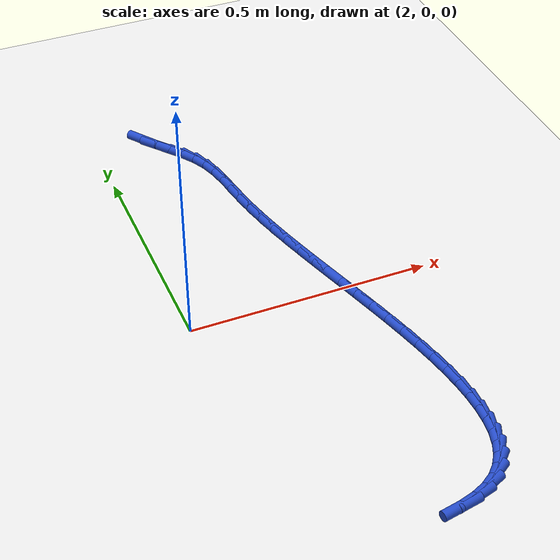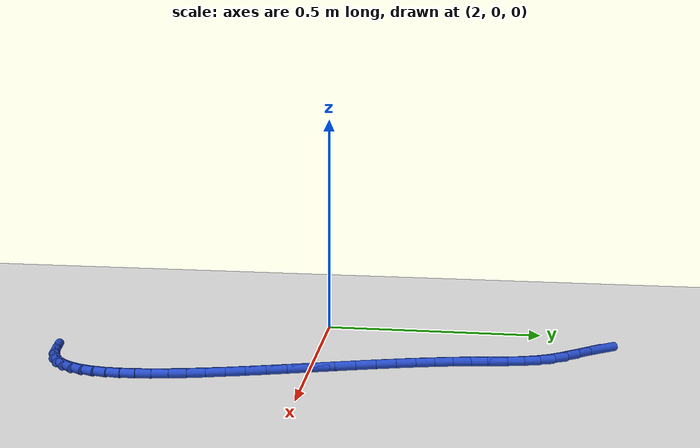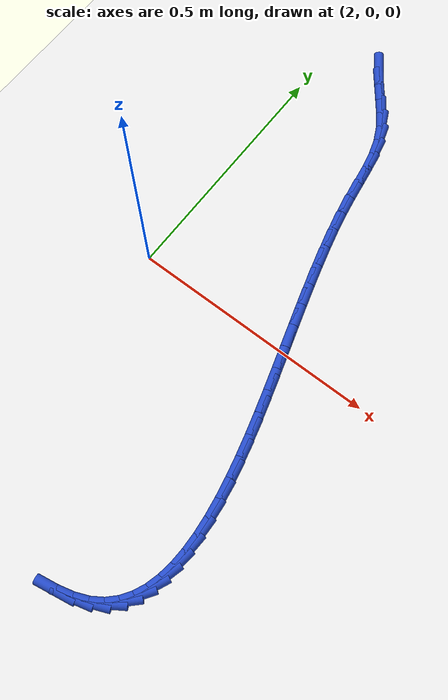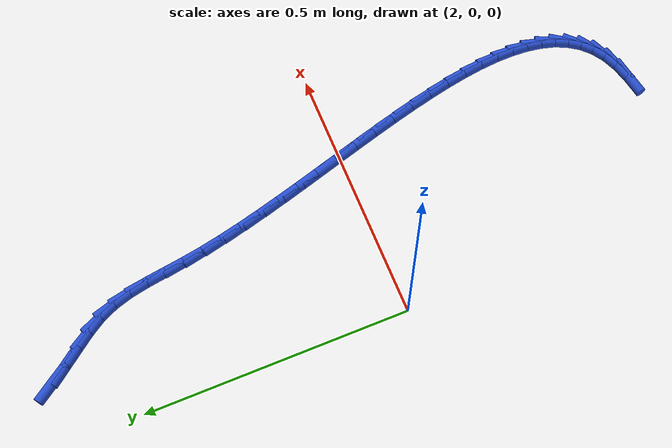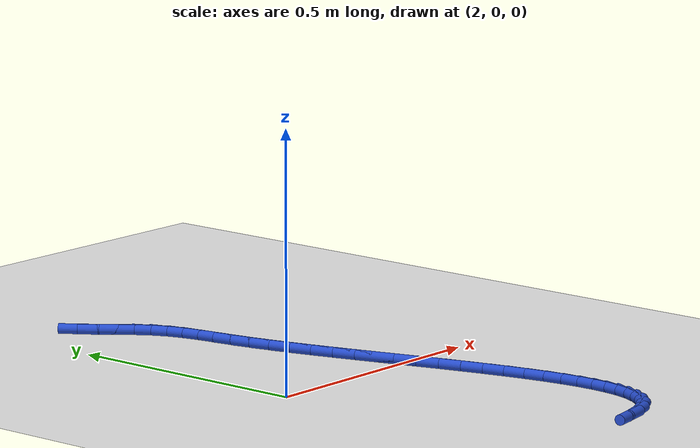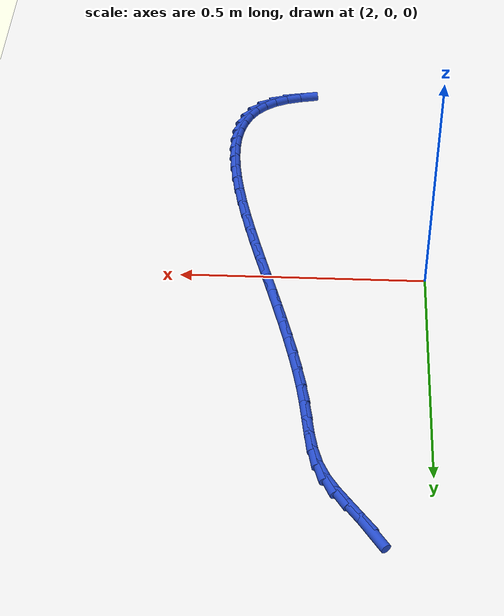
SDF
<sdf version="1.6">
 <world name="default">
  <model name="ground_plane">
   <static>1</static>
   <link name="link">
    <collision name="collision">
     <geometry><plane><normal>0 0 1</normal><size>100 100</size></plane></geometry>
     <surface><friction><ode><mu>100</mu><mu2>50</mu2></ode></friction></surface>
    </collision>
    <visual name="visual">
     <cast_shadows>0</cast_shadows>
     <geometry><plane><normal>0 0 1</normal><size>100 100</size></plane></geometry>
     <material>
      <script><uri>file://media/materials/scripts/gazebo.material</uri><name>Gazebo/WhiteGlow</name></script>
     </material>
    </visual>
   </link>
  </model>
  <model name="line">
   <link name="link_92">
    <pose>2.110981514061164 0.6293908906625809 0.01 0 1.57 -0.9618954678939433</pose>
    <collision name="collision">
     <geometry><cylinder><radius>0.01</radius><length>0.08</length></cylinder></geometry>
    </collision>
    <visual name="visual">
     <material>
      <script><name>Gazebo/Blue</name><uri>file://media/materials/scripts/gazebo.material</uri></script>
     </material>
     <geometry><cylinder><radius>0.01</radius><length>0.08</length></cylinder></geometry>
    </visual>
   </link>
   <link name="link_93">
    <pose>2.132265491286733 0.598866777954298 0.01 0 1.57 -0.9082118773592756</pose>
    <collision name="collision">
     <geometry><cylinder><radius>0.01</radius><length>0.08</length></cylinder></geometry>
    </collision>
    <visual name="visual">
     <material>
      <script><name>Gazebo/Blue</name><uri>file://media/materials/scripts/gazebo.material</uri></script>
     </material>
     <geometry><cylinder><radius>0.01</radius><length>0.08</length></cylinder></geometry>
    </visual>
   </link>
   <link name="link_94">
    <pose>2.1544194383078334 0.5704735426587182 0.01 0 1.57 -0.9150123487633394</pose>
    <collision name="collision">
     <geometry><cylinder><radius>0.01</radius><length>0.08</length></cylinder></geometry>
    </collision>
    <visual name="visual">
     <material>
      <script><name>Gazebo/Blue</name><uri>file://media/materials/scripts/gazebo.material</uri></script>
     </material>
     <geometry><cylinder><radius>0.01</radius><length>0.08</length></cylinder></geometry>
    </visual>
   </link>
   <link name="link_95">
    <pose>2.1756700421775492 0.542852807600791 0.01 0 1.57 -0.9884715267036742</pose>
    <collision name="collision">
     <geometry><cylinder><radius>0.01</radius><length>0.08</length></cylinder></geometry>
    </collision>
    <visual name="visual">
     <material>
      <script><name>Gazebo/Blue</name><uri>file://media/materials/scripts/gazebo.material</uri></script>
     </material>
     <geometry><cylinder><radius>0.01</radius><length>0.08</length></cylinder></geometry>
    </visual>
   </link>
   <link name="link_96">
    <pose>2.194243989948961 0.5146461956054671 0.01 0 1.57 -1.1286883505743908</pose>
    <collision name="collision">
     <geometry><cylinder><radius>0.01</radius><length>0.08</length></cylinder></geometry>
    </collision>
    <visual name="visual">
     <material>
      <script><name>Gazebo/Blue</name><uri>file://media/materials/scripts/gazebo.material</uri></script>
     </material>
     <geometry><cylinder><radius>0.01</radius><length>0.08</length></cylinder></geometry>
    </visual>
   </link>
   <link name="link_97">
    <pose>2.2084878561581425 0.48455510550825714 0.01 0 1.57 -1.2718772010710533</pose>
    <collision name="collision">
     <geometry><cylinder><radius>0.01</radius><length>0.08</length></cylinder></geometry>
    </collision>
    <visual name="visual">
     <material>
      <script><name>Gazebo/Blue</name><uri>file://media/materials/scripts/gazebo.material</uri></script>
     </material>
     <geometry><cylinder><radius>0.01</radius><length>0.08</length></cylinder></geometry>
    </visual>
   </link>
   <link name="link_98">
    <pose>2.2184759166626873 0.4521423696310134 0.01 0 1.57 -1.3678788998272395</pose>
    <collision name="collision">
     <geometry><cylinder><radius>0.01</radius><length>0.08</length></cylinder></geometry>
    </collision>
    <visual name="visual">
     <material>
      <script><name>Gazebo/Blue</name><uri>file://media/materials/scripts/gazebo.material</uri></script>
     </material>
     <geometry><cylinder><radius>0.01</radius><length>0.08</length></cylinder></geometry>
    </visual>
   </link>
   <link name="link_99">
    <pose>2.2255793844956195 0.41761747437790997 0.01 0 1.57 -1.4176166113028246</pose>
    <collision name="collision">
     <geometry><cylinder><radius>0.01</radius><length>0.08</length></cylinder></geometry>
    </collision>
    <visual name="visual">
     <material>
      <script><name>Gazebo/Blue</name><uri>file://media/materials/scripts/gazebo.material</uri></script>
     </material>
     <geometry><cylinder><radius>0.01</radius><length>0.08</length></cylinder></geometry>
    </visual>
   </link>
   <link name="link_100">
    <pose>2.2312009799965686 0.38120561572550854 0.01 0 1.57 -1.4262399964397687</pose>
    <collision name="collision">
     <geometry><cylinder><radius>0.01</radius><length>0.08</length></cylinder></geometry>
    </collision>
    <visual name="visual">
     <material>
      <script><name>Gazebo/Blue</name><uri>file://media/materials/scripts/gazebo.material</uri></script>
     </material>
     <geometry><cylinder><radius>0.01</radius><length>0.08</length></cylinder></geometry>
    </visual>
   </link>
   <link name="link_101">
    <pose>2.236743423505167 0.3431319896503729 0.01 0 1.57 -1.400547397545784</pose>
    <collision name="collision">
     <geometry><cylinder><radius>0.01</radius><length>0.08</length></cylinder></geometry>
    </collision>
    <visual name="visual">
     <material>
      <script><name>Gazebo/Blue</name><uri>file://media/materials/scripts/gazebo.material</uri></script>
     </material>
     <geometry><cylinder><radius>0.01</radius><length>0.08</length></cylinder></geometry>
    </visual>
   </link>
   <link name="link_102">
    <pose>2.2435359622238766 0.3036205223812389 0.01 0 1.57 -1.3664741845625026</pose>
    <collision name="collision">
     <geometry><cylinder><radius>0.01</radius><length>0.08</length></cylinder></geometry>
    </collision>
    <visual name="visual">
     <material>
      <script><name>Gazebo/Blue</name><uri>file://media/materials/scripts/gazebo.material</uri></script>
     </material>
     <geometry><cylinder><radius>0.01</radius><length>0.08</length></cylinder></geometry>
    </visual>
   </link>
   <link name="link_103">
    <pose>2.251978150828213 0.26287907338951494 0.01 0 1.57 -1.339153936562005</pose>
    <collision name="collision">
     <geometry><cylinder><radius>0.01</radius><length>0.08</length></cylinder></geometry>
    </collision>
    <visual name="visual">
     <material>
      <script><name>Gazebo/Blue</name><uri>file://media/materials/scripts/gazebo.material</uri></script>
     </material>
     <geometry><cylinder><radius>0.01</radius><length>0.08</length></cylinder></geometry>
    </visual>
   </link>
   <link name="link_104">
    <pose>2.261831793939757 0.22110448067977184 0.01 0 1.57 -1.3178457385438163</pose>
    <collision name="collision">
     <geometry><cylinder><radius>0.01</radius><length>0.08</length></cylinder></geometry>
    </collision>
    <visual name="visual">
     <material>
      <script><name>Gazebo/Blue</name><uri>file://media/materials/scripts/gazebo.material</uri></script>
     </material>
     <geometry><cylinder><radius>0.01</radius><length>0.08</length></cylinder></geometry>
    </visual>
   </link>
   <link name="link_105">
    <pose>2.2728462242544816 0.1784933667192989 0.01 0 1.57 -1.301774162058767</pose>
    <collision name="collision">
     <geometry><cylinder><radius>0.01</radius><length>0.08</length></cylinder></geometry>
    </collision>
    <visual name="visual">
     <material>
      <script><name>Gazebo/Blue</name><uri>file://media/materials/scripts/gazebo.material</uri></script>
     </material>
     <geometry><cylinder><radius>0.01</radius><length>0.08</length></cylinder></geometry>
    </visual>
   </link>
   <link name="link_106">
    <pose>2.2847707744683627 0.13524235397538284 0.01 0 1.57 -1.2903837334135648</pose>
    <collision name="collision">
     <geometry><cylinder><radius>0.01</radius><length>0.08</length></cylinder></geometry>
    </collision>
    <visual name="visual">
     <material>
      <script><name>Gazebo/Blue</name><uri>file://media/materials/scripts/gazebo.material</uri></script>
     </material>
     <geometry><cylinder><radius>0.01</radius><length>0.08</length></cylinder></geometry>
    </visual>
   </link>
   <link name="link_107">
    <pose>2.297354777277373 0.09154806491531281 0.01 0 1.57 -1.2833006238019995</pose>
    <collision name="collision">
     <geometry><cylinder><radius>0.01</radius><length>0.08</length></cylinder></geometry>
    </collision>
    <visual name="visual">
     <material>
      <script><name>Gazebo/Blue</name><uri>file://media/materials/scripts/gazebo.material</uri></script>
     </material>
     <geometry><cylinder><radius>0.01</radius><length>0.08</length></cylinder></geometry>
    </visual>
   </link>
   <link name="link_108">
    <pose>2.310347565377489 0.047607122006375735 0.01 0 1.57 -1.2803071964384651</pose>
    <collision name="collision">
     <geometry><cylinder><radius>0.01</radius><length>0.08</length></cylinder></geometry>
    </collision>
    <visual name="visual">
     <material>
      <script><name>Gazebo/Blue</name><uri>file://media/materials/scripts/gazebo.material</uri></script>
     </material>
     <geometry><cylinder><radius>0.01</radius><length>0.08</length></cylinder></geometry>
    </visual>
   </link>
   <link name="link_109">
    <pose>2.323498471464682 0.0036161477158606773 0.01 0 1.57 -1.2813276878446032</pose>
    <collision name="collision">
     <geometry><cylinder><radius>0.01</radius><length>0.08</length></cylinder></geometry>
    </collision>
    <visual name="visual">
     <material>
      <script><name>Gazebo/Blue</name><uri>file://media/materials/scripts/gazebo.material</uri></script>
     </material>
     <geometry><cylinder><radius>0.01</radius><length>0.08</length></cylinder></geometry>
    </visual>
   </link>
   <link name="link_110">
    <pose>2.336556828234928 -0.04022823548894544 0.01 0 1.57 -1.2864239684639416</pose>
    <collision name="collision">
     <geometry><cylinder><radius>0.01</radius><length>0.08</length></cylinder></geometry>
    </collision>
    <visual name="visual">
     <material>
      <script><name>Gazebo/Blue</name><uri>file://media/materials/scripts/gazebo.material</uri></script>
     </material>
     <geometry><cylinder><radius>0.01</radius><length>0.08</length></cylinder></geometry>
    </visual>
   </link>
   <link name="link_111">
    <pose>2.349271968384201 -0.08372940514075353 0.01 0 1.57 -1.295801168753057</pose>
    <collision name="collision">
     <geometry><cylinder><radius>0.01</radius><length>0.08</length></cylinder></geometry>
    </collision>
    <visual name="visual">
     <material>
      <script><name>Gazebo/Blue</name><uri>file://media/materials/scripts/gazebo.material</uri></script>
     </material>
     <geometry><cylinder><radius>0.01</radius><length>0.08</length></cylinder></geometry>
    </visual>
   </link>
   <link name="link_112">
    <pose>2.3613932246084754 -0.12669073877227616 0.01 0 1.57 -1.309823880866066</pose>
    <collision name="collision">
     <geometry><cylinder><radius>0.01</radius><length>0.08</length></cylinder></geometry>
    </collision>
    <visual name="visual">
     <material>
      <script><name>Gazebo/Blue</name><uri>file://media/materials/scripts/gazebo.material</uri></script>
     </material>
     <geometry><cylinder><radius>0.01</radius><length>0.08</length></cylinder></geometry>
    </visual>
   </link>
   <link name="link_113">
    <pose>2.3726699296037257 -0.16891561391622537 0.01 0 1.57 -1.3290446422247613</pose>
    <collision name="collision">
     <geometry><cylinder><radius>0.01</radius><length>0.08</length></cylinder></geometry>
    </collision>
    <visual name="visual">
     <material>
      <script><name>Gazebo/Blue</name><uri>file://media/materials/scripts/gazebo.material</uri></script>
     </material>
     <geometry><cylinder><radius>0.01</radius><length>0.08</length></cylinder></geometry>
    </visual>
   </link>
   <link name="link_114">
    <pose>2.382851416065925 -0.21020740810531408 0.01 0 1.57 -1.3542474312073176</pose>
    <collision name="collision">
     <geometry><cylinder><radius>0.01</radius><length>0.08</length></cylinder></geometry>
    </collision>
    <visual name="visual">
     <material>
      <script><name>Gazebo/Blue</name><uri>file://media/materials/scripts/gazebo.material</uri></script>
     </material>
     <geometry><cylinder><radius>0.01</radius><length>0.08</length></cylinder></geometry>
    </visual>
   </link>
   <link name="link_115">
    <pose>2.3916870166910473 -0.2503694988722523 0.01 0 1.57 -1.3865097139206062</pose>
    <collision name="collision">
     <geometry><cylinder><radius>0.01</radius><length>0.08</length></cylinder></geometry>
    </collision>
    <visual name="visual">
     <material>
      <script><name>Gazebo/Blue</name><uri>file://media/materials/scripts/gazebo.material</uri></script>
     </material>
     <geometry><cylinder><radius>0.01</radius><length>0.08</length></cylinder></geometry>
    </visual>
   </link>
   <link name="link_116">
    <pose>2.398926064175068 -0.2892052637497531 0.01 0 1.57 -1.4272863609055308</pose>
    <collision name="collision">
     <geometry><cylinder><radius>0.01</radius><length>0.08</length></cylinder></geometry>
    </collision>
    <visual name="visual">
     <material>
      <script><name>Gazebo/Blue</name><uri>file://media/materials/scripts/gazebo.material</uri></script>
     </material>
     <geometry><cylinder><radius>0.01</radius><length>0.08</length></cylinder></geometry>
    </visual>
   </link>
   <link name="link_117">
    <pose>2.404317891213961 -0.3265180802705284 0.01 0 1.57 -1.4785152286370964</pose>
    <collision name="collision">
     <geometry><cylinder><radius>0.01</radius><length>0.08</length></cylinder></geometry>
    </collision>
    <visual name="visual">
     <material>
      <script><name>Gazebo/Blue</name><uri>file://media/materials/scripts/gazebo.material</uri></script>
     </material>
     <geometry><cylinder><radius>0.01</radius><length>0.08</length></cylinder></geometry>
    </visual>
   </link>
   <link name="link_118">
    <pose>2.4076118305037015 -0.3621113259672913 0.01 0 1.57 -1.54273163726011</pose>
    <collision name="collision">
     <geometry><cylinder><radius>0.01</radius><length>0.08</length></cylinder></geometry>
    </collision>
    <visual name="visual">
     <material>
      <script><name>Gazebo/Blue</name><uri>file://media/materials/scripts/gazebo.material</uri></script>
     </material>
     <geometry><cylinder><radius>0.01</radius><length>0.08</length></cylinder></geometry>
    </visual>
   </link>
   <link name="link_119">
    <pose>2.408557214740261 -0.3957883783727516 0.01 0 1.57 1.518448247530134</pose>
    <collision name="collision">
     <geometry><cylinder><radius>0.01</radius><length>0.08</length></cylinder></geometry>
    </collision>
    <visual name="visual">
     <material>
      <script><name>Gazebo/Blue</name><uri>file://media/materials/scripts/gazebo.material</uri></script>
     </material>
     <geometry><cylinder><radius>0.01</radius><length>0.08</length></cylinder></geometry>
    </visual>
   </link>
   <link name="link_120">
    <pose>2.406903376619617 -0.42735261501962274 0.01 0 1.57 1.4180471721930743</pose>
    <collision name="collision">
     <geometry><cylinder><radius>0.01</radius><length>0.08</length></cylinder></geometry>
    </collision>
    <visual name="visual">
     <material>
      <script><name>Gazebo/Blue</name><uri>file://media/materials/scripts/gazebo.material</uri></script>
     </material>
     <geometry><cylinder><radius>0.01</radius><length>0.08</length></cylinder></geometry>
    </visual>
   </link>
   <link name="link_121">
    <pose>2.4023996488377413 -0.4566074134406163 0.01 0 1.57 1.2938178948684496</pose>
    <collision name="collision">
     <geometry><cylinder><radius>0.01</radius><length>0.08</length></cylinder></geometry>
    </collision>
    <visual name="visual">
     <material>
      <script><name>Gazebo/Blue</name><uri>file://media/materials/scripts/gazebo.material</uri></script>
     </material>
     <geometry><cylinder><radius>0.01</radius><length>0.08</length></cylinder></geometry>
    </visual>
   </link>
   <link name="link_122">
    <pose>2.3947953640906086 -0.4833561511684452 0.01 0 1.57 1.1432908499793015</pose>
    <collision name="collision">
     <geometry><cylinder><radius>0.01</radius><length>0.08</length></cylinder></geometry>
    </collision>
    <visual name="visual">
     <material>
      <script><name>Gazebo/Blue</name><uri>file://media/materials/scripts/gazebo.material</uri></script>
     </material>
     <geometry><cylinder><radius>0.01</radius><length>0.08</length></cylinder></geometry>
    </visual>
   </link>
   <link name="link_123">
    <pose>2.3838398550741937 -0.5074022057358197 0.01 0 1.57 0.9678987827896782</pose>
    <collision name="collision">
     <geometry><cylinder><radius>0.01</radius><length>0.08</length></cylinder></geometry>
    </collision>
    <visual name="visual">
     <material>
      <script><name>Gazebo/Blue</name><uri>file://media/materials/scripts/gazebo.material</uri></script>
     </material>
     <geometry><cylinder><radius>0.01</radius><length>0.08</length></cylinder></geometry>
    </visual>
   </link>
   <link name="link_124">
    <pose>2.3692824544844706 -0.528548954675453 0.01 0 1.57 0.775548483680757</pose>
    <collision name="collision">
     <geometry><cylinder><radius>0.01</radius><length>0.08</length></cylinder></geometry>
    </collision>
    <visual name="visual">
     <material>
      <script><name>Gazebo/Blue</name><uri>file://media/materials/scripts/gazebo.material</uri></script>
     </material>
     <geometry><cylinder><radius>0.01</radius><length>0.08</length></cylinder></geometry>
    </visual>
   </link>
   <link name="link_125">
    <pose>2.350872495017414 -0.546599775520057 0.01 0 1.57 0.5802591907389216</pose>
    <collision name="collision">
     <geometry><cylinder><radius>0.01</radius><length>0.08</length></cylinder></geometry>
    </collision>
    <visual name="visual">
     <material>
      <script><name>Gazebo/Blue</name><uri>file://media/materials/scripts/gazebo.material</uri></script>
     </material>
     <geometry><cylinder><radius>0.01</radius><length>0.08</length></cylinder></geometry>
    </visual>
   </link>
   <link name="link_126">
    <pose>2.328359309368997 -0.5613580458023438 0.01 0 1.57 0.398780562463851</pose>
    <collision name="collision">
     <geometry><cylinder><radius>0.01</radius><length>0.08</length></cylinder></geometry>
    </collision>
    <visual name="visual">
     <material>
      <script><name>Gazebo/Blue</name><uri>file://media/materials/scripts/gazebo.material</uri></script>
     </material>
     <geometry><cylinder><radius>0.01</radius><length>0.08</length></cylinder></geometry>
    </visual>
   </link>
   <link name="link_127">
    <pose>2.3015288247678867 -0.5726632460068337 0.01 0 1.57 0.2620244471316807</pose>
    <collision name="collision">
     <geometry><cylinder><radius>0.01</radius><length>0.08</length></cylinder></geometry>
    </collision>
    <visual name="visual">
     <material>
      <script><name>Gazebo/Blue</name><uri>file://media/materials/scripts/gazebo.material</uri></script>
     </material>
     <geometry><cylinder><radius>0.01</radius><length>0.08</length></cylinder></geometry>
    </visual>
   </link>
   <link name="link_128">
    <pose>2.2707402577882756 -0.5809204448655626 0.01 0 1.57 0.17681242651878085</pose>
    <collision name="collision">
     <geometry><cylinder><radius>0.01</radius><length>0.08</length></cylinder></geometry>
    </collision>
    <visual name="visual">
     <material>
      <script><name>Gazebo/Blue</name><uri>file://media/materials/scripts/gazebo.material</uri></script>
     </material>
     <geometry><cylinder><radius>0.01</radius><length>0.08</length></cylinder></geometry>
    </visual>
   </link>
  </model>
 </world>
</sdf>
